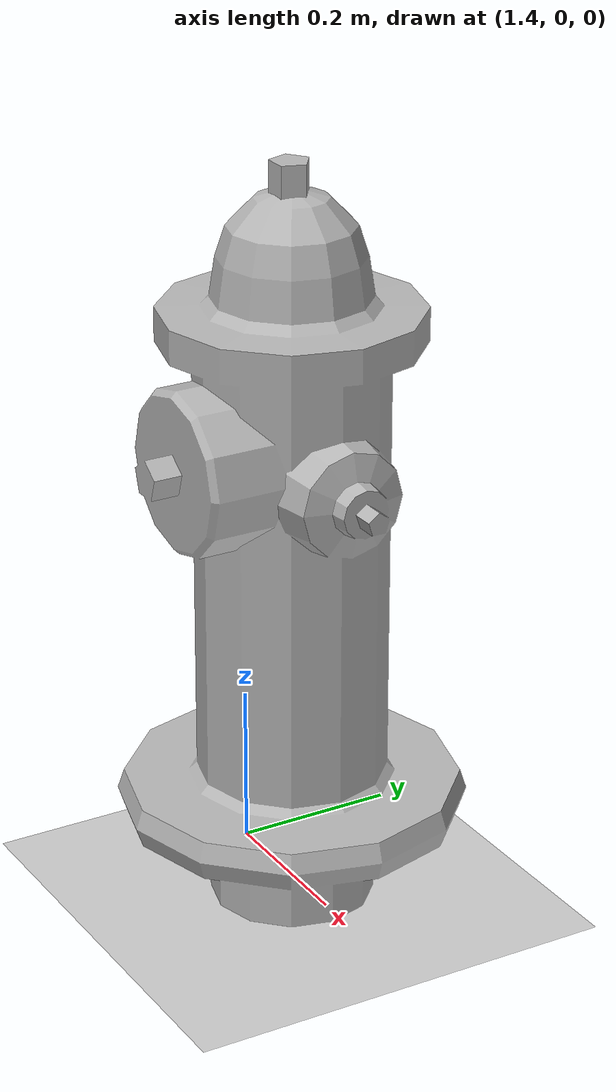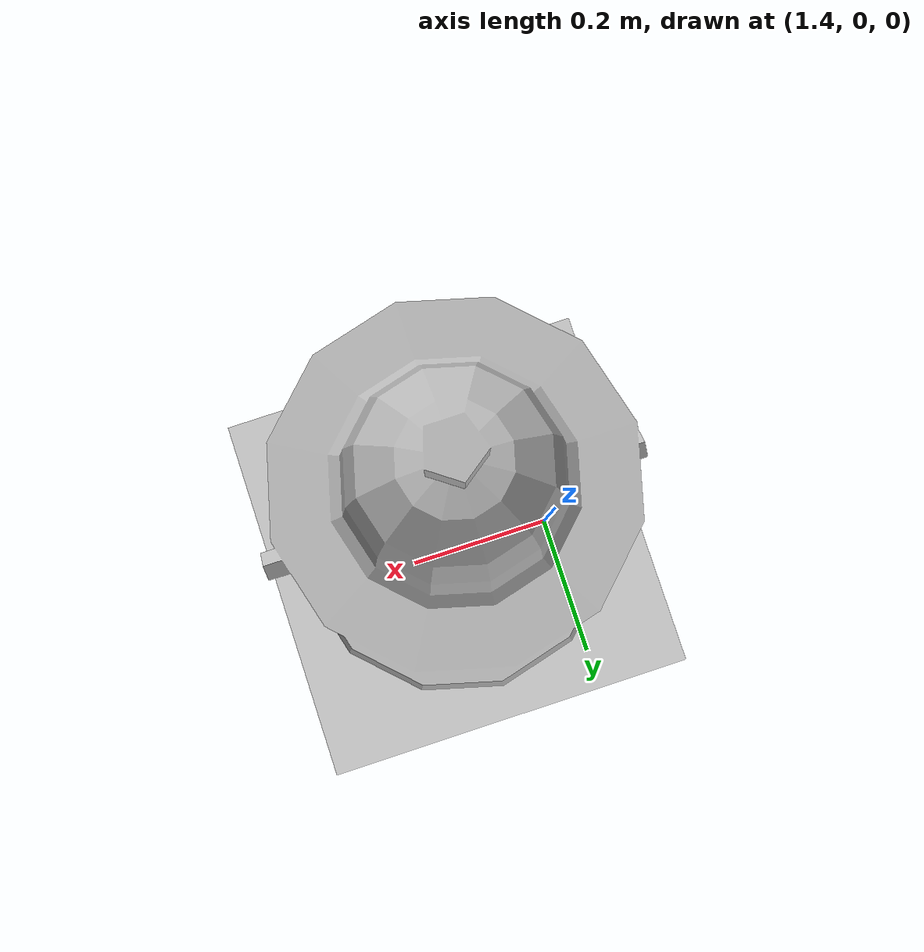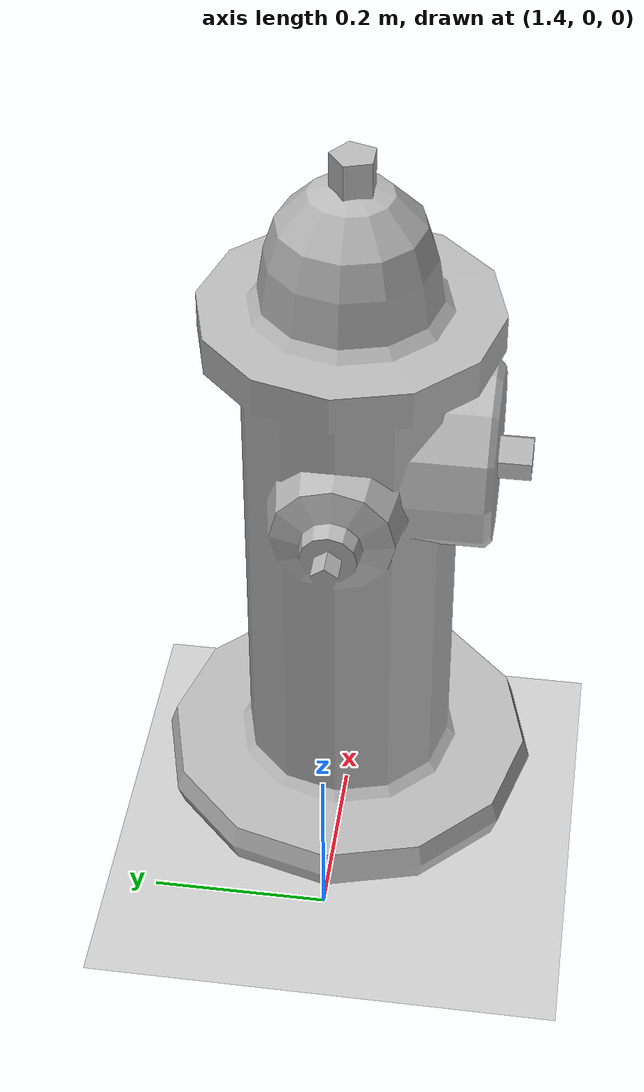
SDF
<sdf version="1.6">
 <world name="default">
  <light name="sun" type="directional">
   <pose>0 0 10 0 -0 0</pose>
   <diffuse>0.8 0.8 0.8 1</diffuse>
   <specular>0.2 0.2 0.2 1</specular>
   <attenuation>
    <range>1000</range>
    <constant>0.9</constant>
    <linear>0.01</linear>
    <quadratic>0.001</quadratic>
   </attenuation>
   <direction>-0.5 0.1 -0.9</direction>
  </light>
  <model name="ground_plane">
   <static>1</static>
   <link name="link">
    <collision name="collision">
     <geometry><plane><normal>0 0 1</normal><size>100 100</size></plane></geometry>
     <surface><friction><ode><mu>100</mu><mu2>50</mu2></ode></friction></surface>
    </collision>
    <visual name="visual">
     <cast_shadows>0</cast_shadows>
     <geometry><plane><normal>0 0 1</normal><size>100 100</size></plane></geometry>
     <material>
      <script><uri>file://media/materials/scripts/gazebo.material</uri><name>Gazebo/Grey</name></script>
     </material>
    </visual>
   </link>
  </model>
  <physics name="default_physics" default="0" type="ode">
   <real_time_update_rate>1000</real_time_update_rate>
   <max_step_size>0.001</max_step_size>
   <real_time_factor>1</real_time_factor>
   <ode>
    <solver>
     <type>quick</type>
     <iters>150</iters>
     <precon_iters>0</precon_iters>
     <sor>1.4</sor>
     <use_dynamic_moi_rescaling>1</use_dynamic_moi_rescaling>
    </solver>
    <constraints>
     <cfm>1e-05</cfm>
     <erp>0.2</erp>
     <contact_max_correcting_vel>2000</contact_max_correcting_vel>
     <contact_surface_layer>0.01</contact_surface_layer>
    </constraints>
   </ode>
  </physics>
  <gravity>0 0 -9.8</gravity>
  <magnetic_field>6e-06 2.3e-05 -4.2e-05</magnetic_field>
  <atmosphere type="adiabatic"/>
  <scene><ambient>0.4 0.4 0.4 1</ambient><background>0.7 0.7 0.7 1</background><shadows>1</shadows></scene>
  <spherical_coordinates>
   <surface_model>EARTH_WGS84</surface_model>
   <latitude_deg>0</latitude_deg>
   <longitude_deg>0</longitude_deg>
   <elevation>0</elevation>
   <heading_deg>0</heading_deg>
  </spherical_coordinates>
  <model name="fire_hydrant">
   <static>1</static>
   <link name="link">
    <collision name="collision">
     <geometry><mesh><uri>model://fire_hydrant/meshes/fire_hydrant.dae</uri></mesh></geometry>
    </collision>
    <visual name="visual">
     <geometry><mesh><uri>model://fire_hydrant/meshes/fire_hydrant.dae</uri></mesh></geometry>
    </visual>
   </link>
   <pose>1.535 -0.0107 0 0 -0 0</pose>
  </model>
 </world>
</sdf>
